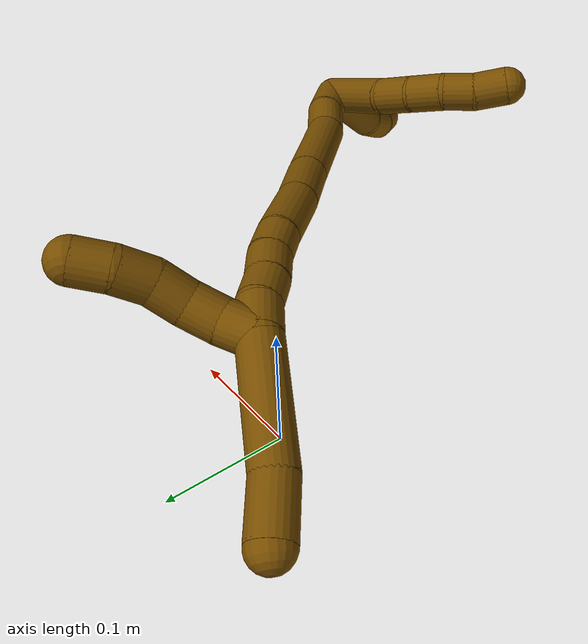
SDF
<sdf version="1.7">
 <world name="default">
  <model name="12">
   <static>0</static>
   <link name="12">
    <collision name="collision-cylinder-e_1_2_8">
     <pose>-0.02438 -0.002081 -0.01792 3.02596 -0.933758 -2.91293</pose>
     <geometry><cylinder><radius>0.0125</radius><length>0.060658</length></cylinder></geometry>
     <surface>
      <friction><ode><mu>1.16</mu><mu2>1.16</mu2><slip1>0</slip1><slip2>0</slip2></ode></friction>
      <contact><ode><kp>1e+06</kp><kd>1</kd><max_vel>0</max_vel><min_depth>0.001</min_depth></ode></contact>
     </surface>
    </collision>
    <visual name="visual-cylinder-e_1_2_8">
     <pose>-0.02438 -0.002081 -0.01792 3.02596 -0.933758 -2.91293</pose>
     <geometry><cylinder><radius>0.0125</radius><length>0.060658</length></cylinder></geometry>
     <material><ambient>0.466667 0.301961 0 1</ambient></material>
    </visual>
    <collision name="collision-cylinder-e_2_8_9">
     <pose>-0.058993 -0.00786 -0.041223 2.53978 -1.00275 -2.11119</pose>
     <geometry><cylinder><radius>0.0125</radius><length>0.024278</length></cylinder></geometry>
     <surface>
      <friction><ode><mu>1.16</mu><mu2>1.16</mu2><slip1>0</slip1><slip2>0</slip2></ode></friction>
      <contact><ode><kp>1e+06</kp><kd>1</kd><max_vel>0</max_vel><min_depth>0.001</min_depth></ode></contact>
     </surface>
    </collision>
    <visual name="visual-cylinder-e_2_8_9">
     <pose>-0.058993 -0.00786 -0.041223 2.53978 -1.00275 -2.11119</pose>
     <geometry><cylinder><radius>0.0125</radius><length>0.024278</length></cylinder></geometry>
     <material><ambient>0.466667 0.301961 0 1</ambient></material>
    </visual>
    <collision name="collision-cylinder-e_3_9_10">
     <pose>-0.078746 -0.017045 -0.050786 2.22172 -0.943749 -1.60054</pose>
     <geometry><cylinder><radius>0.0125</radius><length>0.023514</length></cylinder></geometry>
     <surface>
      <friction><ode><mu>1.16</mu><mu2>1.16</mu2><slip1>0</slip1><slip2>0</slip2></ode></friction>
      <contact><ode><kp>1e+06</kp><kd>1</kd><max_vel>0</max_vel><min_depth>0.001</min_depth></ode></contact>
     </surface>
    </collision>
    <visual name="visual-cylinder-e_3_9_10">
     <pose>-0.078746 -0.017045 -0.050786 2.22172 -0.943749 -1.60054</pose>
     <geometry><cylinder><radius>0.0125</radius><length>0.023514</length></cylinder></geometry>
     <material><ambient>0.466667 0.301961 0 1</ambient></material>
    </visual>
    <collision name="collision-cylinder-e_4_10_11">
     <pose>-0.095122 -0.029424 -0.057769 1.95722 -0.744614 -1.05192</pose>
     <geometry><cylinder><radius>0.0125</radius><length>0.020233</length></cylinder></geometry>
     <surface>
      <friction><ode><mu>1.16</mu><mu2>1.16</mu2><slip1>0</slip1><slip2>0</slip2></ode></friction>
      <contact><ode><kp>1e+06</kp><kd>1</kd><max_vel>0</max_vel><min_depth>0.001</min_depth></ode></contact>
     </surface>
    </collision>
    <visual name="visual-cylinder-e_4_10_11">
     <pose>-0.095122 -0.029424 -0.057769 1.95722 -0.744614 -1.05192</pose>
     <geometry><cylinder><radius>0.0125</radius><length>0.020233</length></cylinder></geometry>
     <material><ambient>0.466667 0.301961 0 1</ambient></material>
    </visual>
    <collision name="collision-cylinder-e_5_11_6">
     <pose>-0.110004 -0.043242 -0.061668 1.72749 -0.852572 -0.977081</pose>
     <geometry><cylinder><radius>0.0125</radius><length>0.021317</length></cylinder></geometry>
     <surface>
      <friction><ode><mu>1.16</mu><mu2>1.16</mu2><slip1>0</slip1><slip2>0</slip2></ode></friction>
      <contact><ode><kp>1e+06</kp><kd>1</kd><max_vel>0</max_vel><min_depth>0.001</min_depth></ode></contact>
     </surface>
    </collision>
    <visual name="visual-cylinder-e_5_11_6">
     <pose>-0.110004 -0.043242 -0.061668 1.72749 -0.852572 -0.977081</pose>
     <geometry><cylinder><radius>0.0125</radius><length>0.021317</length></cylinder></geometry>
     <material><ambient>0.466667 0.301961 0 1</ambient></material>
    </visual>
    <collision name="collision-cylinder-e_1_2_12">
     <pose>0.009965 -0.023402 0.002218 1.47632 0.400947 0.365589</pose>
     <geometry><cylinder><radius>0.0125</radius><length>0.051064</length></cylinder></geometry>
     <surface>
      <friction><ode><mu>1.16</mu><mu2>1.16</mu2><slip1>0</slip1><slip2>0</slip2></ode></friction>
      <contact><ode><kp>1e+06</kp><kd>1</kd><max_vel>0</max_vel><min_depth>0.001</min_depth></ode></contact>
     </surface>
    </collision>
    <visual name="visual-cylinder-e_1_2_12">
     <pose>0.009965 -0.023402 0.002218 1.47632 0.400947 0.365589</pose>
     <geometry><cylinder><radius>0.0125</radius><length>0.051064</length></cylinder></geometry>
     <material><ambient>0.466667 0.301961 0 1</ambient></material>
    </visual>
    <collision name="collision-cylinder-e_2_12_13">
     <pose>0.024858 -0.057615 0.0098 1.11013 0.38771 0.242283</pose>
     <geometry><cylinder><radius>0.0125</radius><length>0.026071</length></cylinder></geometry>
     <surface>
      <friction><ode><mu>1.16</mu><mu2>1.16</mu2><slip1>0</slip1><slip2>0</slip2></ode></friction>
      <contact><ode><kp>1e+06</kp><kd>1</kd><max_vel>0</max_vel><min_depth>0.001</min_depth></ode></contact>
     </surface>
    </collision>
    <visual name="visual-cylinder-e_2_12_13">
     <pose>0.024858 -0.057615 0.0098 1.11013 0.38771 0.242283</pose>
     <geometry><cylinder><radius>0.0125</radius><length>0.026071</length></cylinder></geometry>
     <material><ambient>0.466667 0.301961 0 1</ambient></material>
    </visual>
    <collision name="collision-cylinder-e_3_13_5">
     <pose>0.033468 -0.07593 0.022963 0.766319 0.327902 0.133171</pose>
     <geometry><cylinder><radius>0.0125</radius><length>0.022865</length></cylinder></geometry>
     <surface>
      <friction><ode><mu>1.16</mu><mu2>1.16</mu2><slip1>0</slip1><slip2>0</slip2></ode></friction>
      <contact><ode><kp>1e+06</kp><kd>1</kd><max_vel>0</max_vel><min_depth>0.001</min_depth></ode></contact>
     </surface>
    </collision>
    <visual name="visual-cylinder-e_3_13_5">
     <pose>0.033468 -0.07593 0.022963 0.766319 0.327902 0.133171</pose>
     <geometry><cylinder><radius>0.0125</radius><length>0.022865</length></cylinder></geometry>
     <material><ambient>0.466667 0.301961 0 1</ambient></material>
    </visual>
    <collision name="collision-cylinder-e_1_2_14">
     <pose>-0.003975 0.008545 -0.013735 -2.58509 -0.240929 0.801627</pose>
     <geometry><cylinder><radius>0.0125</radius><length>0.033315</length></cylinder></geometry>
     <surface>
      <friction><ode><mu>1.16</mu><mu2>1.16</mu2><slip1>0</slip1><slip2>0</slip2></ode></friction>
      <contact><ode><kp>1e+06</kp><kd>1</kd><max_vel>0</max_vel><min_depth>0.001</min_depth></ode></contact>
     </surface>
    </collision>
    <visual name="visual-cylinder-e_1_2_14">
     <pose>-0.003975 0.008545 -0.013735 -2.58509 -0.240929 0.801627</pose>
     <geometry><cylinder><radius>0.0125</radius><length>0.033315</length></cylinder></geometry>
     <material><ambient>0.466667 0.301961 0 1</ambient></material>
    </visual>
    <collision name="collision-cylinder-e_2_14_15">
     <pose>-0.011426 0.021446 -0.040173 -2.81117 -0.25333 1.30455</pose>
     <geometry><cylinder><radius>0.0125</radius><length>0.027742</length></cylinder></geometry>
     <surface>
      <friction><ode><mu>1.16</mu><mu2>1.16</mu2><slip1>0</slip1><slip2>0</slip2></ode></friction>
      <contact><ode><kp>1e+06</kp><kd>1</kd><max_vel>0</max_vel><min_depth>0.001</min_depth></ode></contact>
     </surface>
    </collision>
    <visual name="visual-cylinder-e_2_14_15">
     <pose>-0.011426 0.021446 -0.040173 -2.81117 -0.25333 1.30455</pose>
     <geometry><cylinder><radius>0.0125</radius><length>0.027742</length></cylinder></geometry>
     <material><ambient>0.466667 0.301961 0 1</ambient></material>
    </visual>
    <collision name="collision-cylinder-e_3_15_16">
     <pose>-0.025841 0.045018 -0.082409 -2.56479 -0.301012 0.945107</pose>
     <geometry><cylinder><radius>0.0125</radius><length>0.073788</length></cylinder></geometry>
     <surface>
      <friction><ode><mu>1.16</mu><mu2>1.16</mu2><slip1>0</slip1><slip2>0</slip2></ode></friction>
      <contact><ode><kp>1e+06</kp><kd>1</kd><max_vel>0</max_vel><min_depth>0.001</min_depth></ode></contact>
     </surface>
    </collision>
    <visual name="visual-cylinder-e_3_15_16">
     <pose>-0.025841 0.045018 -0.082409 -2.56479 -0.301012 0.945107</pose>
     <geometry><cylinder><radius>0.0125</radius><length>0.073788</length></cylinder></geometry>
     <material><ambient>0.466667 0.301961 0 1</ambient></material>
    </visual>
    <collision name="collision-cylinder-e_4_16_17">
     <pose>-0.04254 0.073851 -0.127497 -2.58777 -0.305205 0.992024</pose>
     <geometry><cylinder><radius>0.0125</radius><length>0.038345</length></cylinder></geometry>
     <surface>
      <friction><ode><mu>1.16</mu><mu2>1.16</mu2><slip1>0</slip1><slip2>0</slip2></ode></friction>
      <contact><ode><kp>1e+06</kp><kd>1</kd><max_vel>0</max_vel><min_depth>0.001</min_depth></ode></contact>
     </surface>
    </collision>
    <visual name="visual-cylinder-e_4_16_17">
     <pose>-0.04254 0.073851 -0.127497 -2.58777 -0.305205 0.992024</pose>
     <geometry><cylinder><radius>0.0125</radius><length>0.038345</length></cylinder></geometry>
     <material><ambient>0.466667 0.301961 0 1</ambient></material>
    </visual>
    <collision name="collision-cylinder-e_5_17_18">
     <pose>-0.054533 0.096112 -0.160846 -2.52387 -0.278034 0.826535</pose>
     <geometry><cylinder><radius>0.0125</radius><length>0.045405</length></cylinder></geometry>
     <surface>
      <friction><ode><mu>1.16</mu><mu2>1.16</mu2><slip1>0</slip1><slip2>0</slip2></ode></friction>
      <contact><ode><kp>1e+06</kp><kd>1</kd><max_vel>0</max_vel><min_depth>0.001</min_depth></ode></contact>
     </surface>
    </collision>
    <visual name="visual-cylinder-e_5_17_18">
     <pose>-0.054533 0.096112 -0.160846 -2.52387 -0.278034 0.826535</pose>
     <geometry><cylinder><radius>0.0125</radius><length>0.045405</length></cylinder></geometry>
     <material><ambient>0.466667 0.301961 0 1</ambient></material>
    </visual>
    <collision name="collision-cylinder-e_6_18_19">
     <pose>-0.062758 0.113716 -0.187325 -2.62258 -0.196878 0.712245</pose>
     <geometry><cylinder><radius>0.0125</radius><length>0.020391</length></cylinder></geometry>
     <surface>
      <friction><ode><mu>1.16</mu><mu2>1.16</mu2><slip1>0</slip1><slip2>0</slip2></ode></friction>
      <contact><ode><kp>1e+06</kp><kd>1</kd><max_vel>0</max_vel><min_depth>0.001</min_depth></ode></contact>
     </surface>
    </collision>
    <visual name="visual-cylinder-e_6_18_19">
     <pose>-0.062758 0.113716 -0.187325 -2.62258 -0.196878 0.712245</pose>
     <geometry><cylinder><radius>0.0125</radius><length>0.020391</length></cylinder></geometry>
     <material><ambient>0.466667 0.301961 0 1</ambient></material>
    </visual>
    <collision name="collision-cylinder-e_7_19_20">
     <pose>-0.067543 0.122136 -0.205088 -2.77748 -0.279645 1.30543</pose>
     <geometry><cylinder><radius>0.0125</radius><length>0.020223</length></cylinder></geometry>
     <surface>
      <friction><ode><mu>1.16</mu><mu2>1.16</mu2><slip1>0</slip1><slip2>0</slip2></ode></friction>
      <contact><ode><kp>1e+06</kp><kd>1</kd><max_vel>0</max_vel><min_depth>0.001</min_depth></ode></contact>
     </surface>
    </collision>
    <visual name="visual-cylinder-e_7_19_20">
     <pose>-0.067543 0.122136 -0.205088 -2.77748 -0.279645 1.30543</pose>
     <geometry><cylinder><radius>0.0125</radius><length>0.020223</length></cylinder></geometry>
     <material><ambient>0.466667 0.301961 0 1</ambient></material>
    </visual>
    <collision name="collision-cylinder-e_8_20_21">
     <pose>-0.072606 0.130342 -0.222843 -2.64106 -0.225879 0.835203</pose>
     <geometry><cylinder><radius>0.0125</radius><length>0.020287</length></cylinder></geometry>
     <surface>
      <friction><ode><mu>1.16</mu><mu2>1.16</mu2><slip1>0</slip1><slip2>0</slip2></ode></friction>
      <contact><ode><kp>1e+06</kp><kd>1</kd><max_vel>0</max_vel><min_depth>0.001</min_depth></ode></contact>
     </surface>
    </collision>
    <visual name="visual-cylinder-e_8_20_21">
     <pose>-0.072606 0.130342 -0.222843 -2.64106 -0.225879 0.835203</pose>
     <geometry><cylinder><radius>0.0125</radius><length>0.020287</length></cylinder></geometry>
     <material><ambient>0.466667 0.301961 0 1</ambient></material>
    </visual>
    <collision name="collision-cylinder-e_9_21_1">
     <pose>-0.07699 0.137351 -0.241289 -2.91388 -0.207553 1.4775</pose>
     <geometry><cylinder><radius>0.0125</radius><length>0.020503</length></cylinder></geometry>
     <surface>
      <friction><ode><mu>1.16</mu><mu2>1.16</mu2><slip1>0</slip1><slip2>0</slip2></ode></friction>
      <contact><ode><kp>1e+06</kp><kd>1</kd><max_vel>0</max_vel><min_depth>0.001</min_depth></ode></contact>
     </surface>
    </collision>
    <visual name="visual-cylinder-e_9_21_1">
     <pose>-0.07699 0.137351 -0.241289 -2.91388 -0.207553 1.4775</pose>
     <geometry><cylinder><radius>0.0125</radius><length>0.020503</length></cylinder></geometry>
     <material><ambient>0.466667 0.301961 0 1</ambient></material>
    </visual>
    <collision name="collision-cylinder-e_1_1_22">
     <pose>-0.079118 0.139627 -0.284815 -3.14126 -0.000436 1.82817</pose>
     <geometry><cylinder><radius>0.0125</radius><length>0.067508</length></cylinder></geometry>
     <surface>
      <friction><ode><mu>1.16</mu><mu2>1.16</mu2><slip1>0</slip1><slip2>0</slip2></ode></friction>
      <contact><ode><kp>1e+06</kp><kd>1</kd><max_vel>0</max_vel><min_depth>0.001</min_depth></ode></contact>
     </surface>
    </collision>
    <visual name="visual-cylinder-e_1_1_22">
     <pose>-0.079118 0.139627 -0.284815 -3.14126 -0.000436 1.82817</pose>
     <geometry><cylinder><radius>0.0125</radius><length>0.067508</length></cylinder></geometry>
     <material><ambient>0.466667 0.301961 0 1</ambient></material>
    </visual>
    <collision name="collision-cylinder-e_2_22_4">
     <pose>-0.079806 0.142972 -0.334455 -2.93469 -0.041466 0.394272</pose>
     <geometry><cylinder><radius>0.0125</radius><length>0.032492</length></cylinder></geometry>
     <surface>
      <friction><ode><mu>1.16</mu><mu2>1.16</mu2><slip1>0</slip1><slip2>0</slip2></ode></friction>
      <contact><ode><kp>1e+06</kp><kd>1</kd><max_vel>0</max_vel><min_depth>0.001</min_depth></ode></contact>
     </surface>
    </collision>
    <visual name="visual-cylinder-e_2_22_4">
     <pose>-0.079806 0.142972 -0.334455 -2.93469 -0.041466 0.394272</pose>
     <geometry><cylinder><radius>0.0125</radius><length>0.032492</length></cylinder></geometry>
     <material><ambient>0.466667 0.301961 0 1</ambient></material>
    </visual>
    <collision name="collision-cylinder-e_1_1_23">
     <pose>-0.073494 0.145967 -0.245751 -0.874464 0.595496 -0.284921</pose>
     <geometry><cylinder><radius>0.0125</radius><length>0.02</length></cylinder></geometry>
     <surface>
      <friction><ode><mu>1.16</mu><mu2>1.16</mu2><slip1>0</slip1><slip2>0</slip2></ode></friction>
      <contact><ode><kp>1e+06</kp><kd>1</kd><max_vel>0</max_vel><min_depth>0.001</min_depth></ode></contact>
     </surface>
    </collision>
    <visual name="visual-cylinder-e_1_1_23">
     <pose>-0.073494 0.145967 -0.245751 -0.874464 0.595496 -0.284921</pose>
     <geometry><cylinder><radius>0.0125</radius><length>0.02</length></cylinder></geometry>
     <material><ambient>0.466667 0.301961 0 1</ambient></material>
    </visual>
    <collision name="collision-cylinder-e_2_23_24">
     <pose>-0.064893 0.160289 -0.235195 -0.988695 0.303755 -0.164618</pose>
     <geometry><cylinder><radius>0.0125</radius><length>0.02</length></cylinder></geometry>
     <surface>
      <friction><ode><mu>1.16</mu><mu2>1.16</mu2><slip1>0</slip1><slip2>0</slip2></ode></friction>
      <contact><ode><kp>1e+06</kp><kd>1</kd><max_vel>0</max_vel><min_depth>0.001</min_depth></ode></contact>
     </surface>
    </collision>
    <visual name="visual-cylinder-e_2_23_24">
     <pose>-0.064893 0.160289 -0.235195 -0.988695 0.303755 -0.164618</pose>
     <geometry><cylinder><radius>0.0125</radius><length>0.02</length></cylinder></geometry>
     <material><ambient>0.466667 0.301961 0 1</ambient></material>
    </visual>
    <collision name="collision-cylinder-e_3_24_25">
     <pose>-0.061723 0.177114 -0.225305 -1.08777 0.017961 -0.010861</pose>
     <geometry><cylinder><radius>0.0125</radius><length>0.02</length></cylinder></geometry>
     <surface>
      <friction><ode><mu>1.16</mu><mu2>1.16</mu2><slip1>0</slip1><slip2>0</slip2></ode></friction>
      <contact><ode><kp>1e+06</kp><kd>1</kd><max_vel>0</max_vel><min_depth>0.001</min_depth></ode></contact>
     </surface>
    </collision>
    <visual name="visual-cylinder-e_3_24_25">
     <pose>-0.061723 0.177114 -0.225305 -1.08777 0.017961 -0.010861</pose>
     <geometry><cylinder><radius>0.0125</radius><length>0.02</length></cylinder></geometry>
     <material><ambient>0.466667 0.301961 0 1</ambient></material>
    </visual>
    <collision name="collision-cylinder-e_4_25_26">
     <pose>-0.061036 0.195747 -0.218629 -1.3659 0.050705 -0.041254</pose>
     <geometry><cylinder><radius>0.0125</radius><length>0.02</length></cylinder></geometry>
     <surface>
      <friction><ode><mu>1.16</mu><mu2>1.16</mu2><slip1>0</slip1><slip2>0</slip2></ode></friction>
      <contact><ode><kp>1e+06</kp><kd>1</kd><max_vel>0</max_vel><min_depth>0.001</min_depth></ode></contact>
     </surface>
    </collision>
    <visual name="visual-cylinder-e_4_25_26">
     <pose>-0.061036 0.195747 -0.218629 -1.3659 0.050705 -0.041254</pose>
     <geometry><cylinder><radius>0.0125</radius><length>0.02</length></cylinder></geometry>
     <material><ambient>0.466667 0.301961 0 1</ambient></material>
    </visual>
    <collision name="collision-cylinder-e_5_26_3">
     <pose>-0.057113 0.214648 -0.214338 -1.32807 0.348705 -0.273967</pose>
     <geometry><cylinder><radius>0.0125</radius><length>0.02</length></cylinder></geometry>
     <surface>
      <friction><ode><mu>1.16</mu><mu2>1.16</mu2><slip1>0</slip1><slip2>0</slip2></ode></friction>
      <contact><ode><kp>1e+06</kp><kd>1</kd><max_vel>0</max_vel><min_depth>0.001</min_depth></ode></contact>
     </surface>
    </collision>
    <visual name="visual-cylinder-e_5_26_3">
     <pose>-0.057113 0.214648 -0.214338 -1.32807 0.348705 -0.273967</pose>
     <geometry><cylinder><radius>0.0125</radius><length>0.02</length></cylinder></geometry>
     <material><ambient>0.466667 0.301961 0 1</ambient></material>
    </visual>
    <collision name="collision-sphere-3">
     <pose>-0.053696 0.22377 -0.21208 0 -0 0</pose>
     <geometry><sphere><radius>0.0125</radius></sphere></geometry>
     <surface>
      <friction><ode><mu>1.16</mu><mu2>1.16</mu2><slip1>0</slip1><slip2>0</slip2></ode></friction>
      <contact><ode><kp>1e+06</kp><kd>1</kd><max_vel>0</max_vel><min_depth>0.001</min_depth></ode></contact>
     </surface>
    </collision>
    <visual name="visual-sphere-3">
     <pose>-0.053696 0.22377 -0.21208 0 -0 0</pose>
     <geometry><sphere><radius>0.0125</radius></sphere></geometry>
     <material><ambient>0.466667 0.301961 0 1</ambient></material>
    </visual>
    <collision name="collision-sphere-26">
     <pose>-0.060529 0.205525 -0.216597 0 -0 0</pose>
     <geometry><sphere><radius>0.0125</radius></sphere></geometry>
     <surface>
      <friction><ode><mu>1.16</mu><mu2>1.16</mu2><slip1>0</slip1><slip2>0</slip2></ode></friction>
      <contact><ode><kp>1e+06</kp><kd>1</kd><max_vel>0</max_vel><min_depth>0.001</min_depth></ode></contact>
     </surface>
    </collision>
    <visual name="visual-sphere-26">
     <pose>-0.060529 0.205525 -0.216597 0 -0 0</pose>
     <geometry><sphere><radius>0.0125</radius></sphere></geometry>
     <material><ambient>0.466667 0.301961 0 1</ambient></material>
    </visual>
    <collision name="collision-sphere-25">
     <pose>-0.061543 0.185968 -0.220661 0 -0 0</pose>
     <geometry><sphere><radius>0.0125</radius></sphere></geometry>
     <surface>
      <friction><ode><mu>1.16</mu><mu2>1.16</mu2><slip1>0</slip1><slip2>0</slip2></ode></friction>
      <contact><ode><kp>1e+06</kp><kd>1</kd><max_vel>0</max_vel><min_depth>0.001</min_depth></ode></contact>
     </surface>
    </collision>
    <visual name="visual-sphere-25">
     <pose>-0.061543 0.185968 -0.220661 0 -0 0</pose>
     <geometry><sphere><radius>0.0125</radius></sphere></geometry>
     <material><ambient>0.466667 0.301961 0 1</ambient></material>
    </visual>
    <collision name="collision-sphere-24">
     <pose>-0.061902 0.168259 -0.229949 0 -0 0</pose>
     <geometry><sphere><radius>0.0125</radius></sphere></geometry>
     <surface>
      <friction><ode><mu>1.16</mu><mu2>1.16</mu2><slip1>0</slip1><slip2>0</slip2></ode></friction>
      <contact><ode><kp>1e+06</kp><kd>1</kd><max_vel>0</max_vel><min_depth>0.001</min_depth></ode></contact>
     </surface>
    </collision>
    <visual name="visual-sphere-24">
     <pose>-0.061902 0.168259 -0.229949 0 -0 0</pose>
     <geometry><sphere><radius>0.0125</radius></sphere></geometry>
     <material><ambient>0.466667 0.301961 0 1</ambient></material>
    </visual>
    <collision name="collision-sphere-23">
     <pose>-0.067884 0.152318 -0.240441 0 -0 0</pose>
     <geometry><sphere><radius>0.0125</radius></sphere></geometry>
     <surface>
      <friction><ode><mu>1.16</mu><mu2>1.16</mu2><slip1>0</slip1><slip2>0</slip2></ode></friction>
      <contact><ode><kp>1e+06</kp><kd>1</kd><max_vel>0</max_vel><min_depth>0.001</min_depth></ode></contact>
     </surface>
    </collision>
    <visual name="visual-sphere-23">
     <pose>-0.067884 0.152318 -0.240441 0 -0 0</pose>
     <geometry><sphere><radius>0.0125</radius></sphere></geometry>
     <material><ambient>0.466667 0.301961 0 1</ambient></material>
    </visual>
    <collision name="collision-sphere-4">
     <pose>-0.080479 0.146307 -0.350341 0 -0 0</pose>
     <geometry><sphere><radius>0.0125</radius></sphere></geometry>
     <surface>
      <friction><ode><mu>1.16</mu><mu2>1.16</mu2><slip1>0</slip1><slip2>0</slip2></ode></friction>
      <contact><ode><kp>1e+06</kp><kd>1</kd><max_vel>0</max_vel><min_depth>0.001</min_depth></ode></contact>
     </surface>
    </collision>
    <visual name="visual-sphere-4">
     <pose>-0.080479 0.146307 -0.350341 0 -0 0</pose>
     <geometry><sphere><radius>0.0125</radius></sphere></geometry>
     <material><ambient>0.466667 0.301961 0 1</ambient></material>
    </visual>
    <collision name="collision-sphere-22">
     <pose>-0.079132 0.139638 -0.318569 0 -0 0</pose>
     <geometry><sphere><radius>0.0125</radius></sphere></geometry>
     <surface>
      <friction><ode><mu>1.16</mu><mu2>1.16</mu2><slip1>0</slip1><slip2>0</slip2></ode></friction>
      <contact><ode><kp>1e+06</kp><kd>1</kd><max_vel>0</max_vel><min_depth>0.001</min_depth></ode></contact>
     </surface>
    </collision>
    <visual name="visual-sphere-22">
     <pose>-0.079132 0.139638 -0.318569 0 -0 0</pose>
     <geometry><sphere><radius>0.0125</radius></sphere></geometry>
     <material><ambient>0.466667 0.301961 0 1</ambient></material>
    </visual>
    <collision name="collision-sphere-1">
     <pose>-0.079103 0.139615 -0.251061 0 -0 0</pose>
     <geometry><sphere><radius>0.0125</radius></sphere></geometry>
     <surface>
      <friction><ode><mu>1.16</mu><mu2>1.16</mu2><slip1>0</slip1><slip2>0</slip2></ode></friction>
      <contact><ode><kp>1e+06</kp><kd>1</kd><max_vel>0</max_vel><min_depth>0.001</min_depth></ode></contact>
     </surface>
    </collision>
    <visual name="visual-sphere-1">
     <pose>-0.079103 0.139615 -0.251061 0 -0 0</pose>
     <geometry><sphere><radius>0.0125</radius></sphere></geometry>
     <material><ambient>0.466667 0.301961 0 1</ambient></material>
    </visual>
    <collision name="collision-sphere-21">
     <pose>-0.074878 0.135086 -0.231516 0 -0 0</pose>
     <geometry><sphere><radius>0.0125</radius></sphere></geometry>
     <surface>
      <friction><ode><mu>1.16</mu><mu2>1.16</mu2><slip1>0</slip1><slip2>0</slip2></ode></friction>
      <contact><ode><kp>1e+06</kp><kd>1</kd><max_vel>0</max_vel><min_depth>0.001</min_depth></ode></contact>
     </surface>
    </collision>
    <visual name="visual-sphere-21">
     <pose>-0.074878 0.135086 -0.231516 0 -0 0</pose>
     <geometry><sphere><radius>0.0125</radius></sphere></geometry>
     <material><ambient>0.466667 0.301961 0 1</ambient></material>
    </visual>
    <collision name="collision-sphere-6">
     <pose>-0.118029 -0.05017 -0.062762 0 -0 0</pose>
     <geometry><sphere><radius>0.0125</radius></sphere></geometry>
     <surface>
      <friction><ode><mu>1.16</mu><mu2>1.16</mu2><slip1>0</slip1><slip2>0</slip2></ode></friction>
      <contact><ode><kp>1e+06</kp><kd>1</kd><max_vel>0</max_vel><min_depth>0.001</min_depth></ode></contact>
     </surface>
    </collision>
    <visual name="visual-sphere-6">
     <pose>-0.118029 -0.05017 -0.062762 0 -0 0</pose>
     <geometry><sphere><radius>0.0125</radius></sphere></geometry>
     <material><ambient>0.466667 0.301961 0 1</ambient></material>
    </visual>
    <collision name="collision-sphere-11">
     <pose>-0.101978 -0.036314 -0.060573 0 -0 0</pose>
     <geometry><sphere><radius>0.0125</radius></sphere></geometry>
     <surface>
      <friction><ode><mu>1.16</mu><mu2>1.16</mu2><slip1>0</slip1><slip2>0</slip2></ode></friction>
      <contact><ode><kp>1e+06</kp><kd>1</kd><max_vel>0</max_vel><min_depth>0.001</min_depth></ode></contact>
     </surface>
    </collision>
    <visual name="visual-sphere-11">
     <pose>-0.101978 -0.036314 -0.060573 0 -0 0</pose>
     <geometry><sphere><radius>0.0125</radius></sphere></geometry>
     <material><ambient>0.466667 0.301961 0 1</ambient></material>
    </visual>
    <collision name="collision-sphere-10">
     <pose>-0.088267 -0.022533 -0.054966 0 -0 0</pose>
     <geometry><sphere><radius>0.0125</radius></sphere></geometry>
     <surface>
      <friction><ode><mu>1.16</mu><mu2>1.16</mu2><slip1>0</slip1><slip2>0</slip2></ode></friction>
      <contact><ode><kp>1e+06</kp><kd>1</kd><max_vel>0</max_vel><min_depth>0.001</min_depth></ode></contact>
     </surface>
    </collision>
    <visual name="visual-sphere-10">
     <pose>-0.088267 -0.022533 -0.054966 0 -0 0</pose>
     <geometry><sphere><radius>0.0125</radius></sphere></geometry>
     <material><ambient>0.466667 0.301961 0 1</ambient></material>
    </visual>
    <collision name="collision-sphere-9">
     <pose>-0.069226 -0.011557 -0.046606 0 -0 0</pose>
     <geometry><sphere><radius>0.0125</radius></sphere></geometry>
     <surface>
      <friction><ode><mu>1.16</mu><mu2>1.16</mu2><slip1>0</slip1><slip2>0</slip2></ode></friction>
      <contact><ode><kp>1e+06</kp><kd>1</kd><max_vel>0</max_vel><min_depth>0.001</min_depth></ode></contact>
     </surface>
    </collision>
    <visual name="visual-sphere-9">
     <pose>-0.069226 -0.011557 -0.046606 0 -0 0</pose>
     <geometry><sphere><radius>0.0125</radius></sphere></geometry>
     <material><ambient>0.466667 0.301961 0 1</ambient></material>
    </visual>
    <collision name="collision-sphere-2">
     <geometry><sphere><radius>0.0125</radius></sphere></geometry>
     <surface>
      <friction><ode><mu>1.16</mu><mu2>1.16</mu2><slip1>0</slip1><slip2>0</slip2></ode></friction>
      <contact><ode><kp>1e+06</kp><kd>1</kd><max_vel>0</max_vel><min_depth>0.001</min_depth></ode></contact>
     </surface>
    </collision>
    <visual name="visual-sphere-2">
     <geometry><sphere><radius>0.0125</radius></sphere></geometry>
     <material><ambient>0.466667 0.301961 0 1</ambient></material>
    </visual>
    <collision name="collision-sphere-19">
     <pose>-0.064752 0.118675 -0.196007 0 -0 0</pose>
     <geometry><sphere><radius>0.0125</radius></sphere></geometry>
     <surface>
      <friction><ode><mu>1.16</mu><mu2>1.16</mu2><slip1>0</slip1><slip2>0</slip2></ode></friction>
      <contact><ode><kp>1e+06</kp><kd>1</kd><max_vel>0</max_vel><min_depth>0.001</min_depth></ode></contact>
     </surface>
    </collision>
    <visual name="visual-sphere-19">
     <pose>-0.064752 0.118675 -0.196007 0 -0 0</pose>
     <geometry><sphere><radius>0.0125</radius></sphere></geometry>
     <material><ambient>0.466667 0.301961 0 1</ambient></material>
    </visual>
    <collision name="collision-sphere-8">
     <pose>-0.048761 -0.004163 -0.035839 0 -0 0</pose>
     <geometry><sphere><radius>0.0125</radius></sphere></geometry>
     <surface>
      <friction><ode><mu>1.16</mu><mu2>1.16</mu2><slip1>0</slip1><slip2>0</slip2></ode></friction>
      <contact><ode><kp>1e+06</kp><kd>1</kd><max_vel>0</max_vel><min_depth>0.001</min_depth></ode></contact>
     </surface>
    </collision>
    <visual name="visual-sphere-8">
     <pose>-0.048761 -0.004163 -0.035839 0 -0 0</pose>
     <geometry><sphere><radius>0.0125</radius></sphere></geometry>
     <material><ambient>0.466667 0.301961 0 1</ambient></material>
    </visual>
    <collision name="collision-sphere-12">
     <pose>0.01993 -0.046805 0.004435 0 -0 0</pose>
     <geometry><sphere><radius>0.0125</radius></sphere></geometry>
     <surface>
      <friction><ode><mu>1.16</mu><mu2>1.16</mu2><slip1>0</slip1><slip2>0</slip2></ode></friction>
      <contact><ode><kp>1e+06</kp><kd>1</kd><max_vel>0</max_vel><min_depth>0.001</min_depth></ode></contact>
     </surface>
    </collision>
    <visual name="visual-sphere-12">
     <pose>0.01993 -0.046805 0.004435 0 -0 0</pose>
     <geometry><sphere><radius>0.0125</radius></sphere></geometry>
     <material><ambient>0.466667 0.301961 0 1</ambient></material>
    </visual>
    <collision name="collision-sphere-13">
     <pose>0.029786 -0.068425 0.015165 0 -0 0</pose>
     <geometry><sphere><radius>0.0125</radius></sphere></geometry>
     <surface>
      <friction><ode><mu>1.16</mu><mu2>1.16</mu2><slip1>0</slip1><slip2>0</slip2></ode></friction>
      <contact><ode><kp>1e+06</kp><kd>1</kd><max_vel>0</max_vel><min_depth>0.001</min_depth></ode></contact>
     </surface>
    </collision>
    <visual name="visual-sphere-13">
     <pose>0.029786 -0.068425 0.015165 0 -0 0</pose>
     <geometry><sphere><radius>0.0125</radius></sphere></geometry>
     <material><ambient>0.466667 0.301961 0 1</ambient></material>
    </visual>
    <collision name="collision-sphere-5">
     <pose>0.03715 -0.083436 0.03076 0 -0 0</pose>
     <geometry><sphere><radius>0.0125</radius></sphere></geometry>
     <surface>
      <friction><ode><mu>1.16</mu><mu2>1.16</mu2><slip1>0</slip1><slip2>0</slip2></ode></friction>
      <contact><ode><kp>1e+06</kp><kd>1</kd><max_vel>0</max_vel><min_depth>0.001</min_depth></ode></contact>
     </surface>
    </collision>
    <visual name="visual-sphere-5">
     <pose>0.03715 -0.083436 0.03076 0 -0 0</pose>
     <geometry><sphere><radius>0.0125</radius></sphere></geometry>
     <material><ambient>0.466667 0.301961 0 1</ambient></material>
    </visual>
    <collision name="collision-sphere-14">
     <pose>-0.007949 0.017089 -0.027471 0 -0 0</pose>
     <geometry><sphere><radius>0.0125</radius></sphere></geometry>
     <surface>
      <friction><ode><mu>1.16</mu><mu2>1.16</mu2><slip1>0</slip1><slip2>0</slip2></ode></friction>
      <contact><ode><kp>1e+06</kp><kd>1</kd><max_vel>0</max_vel><min_depth>0.001</min_depth></ode></contact>
     </surface>
    </collision>
    <visual name="visual-sphere-14">
     <pose>-0.007949 0.017089 -0.027471 0 -0 0</pose>
     <geometry><sphere><radius>0.0125</radius></sphere></geometry>
     <material><ambient>0.466667 0.301961 0 1</ambient></material>
    </visual>
    <collision name="collision-sphere-15">
     <pose>-0.014902 0.025803 -0.052875 0 -0 0</pose>
     <geometry><sphere><radius>0.0125</radius></sphere></geometry>
     <surface>
      <friction><ode><mu>1.16</mu><mu2>1.16</mu2><slip1>0</slip1><slip2>0</slip2></ode></friction>
      <contact><ode><kp>1e+06</kp><kd>1</kd><max_vel>0</max_vel><min_depth>0.001</min_depth></ode></contact>
     </surface>
    </collision>
    <visual name="visual-sphere-15">
     <pose>-0.014902 0.025803 -0.052875 0 -0 0</pose>
     <geometry><sphere><radius>0.0125</radius></sphere></geometry>
     <material><ambient>0.466667 0.301961 0 1</ambient></material>
    </visual>
    <collision name="collision-sphere-16">
     <pose>-0.036779 0.064233 -0.111944 0 -0 0</pose>
     <geometry><sphere><radius>0.0125</radius></sphere></geometry>
     <surface>
      <friction><ode><mu>1.16</mu><mu2>1.16</mu2><slip1>0</slip1><slip2>0</slip2></ode></friction>
      <contact><ode><kp>1e+06</kp><kd>1</kd><max_vel>0</max_vel><min_depth>0.001</min_depth></ode></contact>
     </surface>
    </collision>
    <visual name="visual-sphere-16">
     <pose>-0.036779 0.064233 -0.111944 0 -0 0</pose>
     <geometry><sphere><radius>0.0125</radius></sphere></geometry>
     <material><ambient>0.466667 0.301961 0 1</ambient></material>
    </visual>
    <collision name="collision-sphere-17">
     <pose>-0.048302 0.083469 -0.14305 0 -0 0</pose>
     <geometry><sphere><radius>0.0125</radius></sphere></geometry>
     <surface>
      <friction><ode><mu>1.16</mu><mu2>1.16</mu2><slip1>0</slip1><slip2>0</slip2></ode></friction>
      <contact><ode><kp>1e+06</kp><kd>1</kd><max_vel>0</max_vel><min_depth>0.001</min_depth></ode></contact>
     </surface>
    </collision>
    <visual name="visual-sphere-17">
     <pose>-0.048302 0.083469 -0.14305 0 -0 0</pose>
     <geometry><sphere><radius>0.0125</radius></sphere></geometry>
     <material><ambient>0.466667 0.301961 0 1</ambient></material>
    </visual>
    <collision name="collision-sphere-18">
     <pose>-0.060764 0.108756 -0.178643 0 -0 0</pose>
     <geometry><sphere><radius>0.0125</radius></sphere></geometry>
     <surface>
      <friction><ode><mu>1.16</mu><mu2>1.16</mu2><slip1>0</slip1><slip2>0</slip2></ode></friction>
      <contact><ode><kp>1e+06</kp><kd>1</kd><max_vel>0</max_vel><min_depth>0.001</min_depth></ode></contact>
     </surface>
    </collision>
    <visual name="visual-sphere-18">
     <pose>-0.060764 0.108756 -0.178643 0 -0 0</pose>
     <geometry><sphere><radius>0.0125</radius></sphere></geometry>
     <material><ambient>0.466667 0.301961 0 1</ambient></material>
    </visual>
    <collision name="collision-sphere-20">
     <pose>-0.070334 0.125597 -0.21417 0 -0 0</pose>
     <geometry><sphere><radius>0.0125</radius></sphere></geometry>
     <surface>
      <friction><ode><mu>1.16</mu><mu2>1.16</mu2><slip1>0</slip1><slip2>0</slip2></ode></friction>
      <contact><ode><kp>1e+06</kp><kd>1</kd><max_vel>0</max_vel><min_depth>0.001</min_depth></ode></contact>
     </surface>
    </collision>
    <visual name="visual-sphere-20">
     <pose>-0.070334 0.125597 -0.21417 0 -0 0</pose>
     <geometry><sphere><radius>0.0125</radius></sphere></geometry>
     <material><ambient>0.466667 0.301961 0 1</ambient></material>
    </visual>
    <inertial>
     <pose>-0.04476 0.062566 -0.126708 0 -0 0</pose>
     <mass>0.75</mass>
     <inertia>
      <ixx>0.000109</ixx>
      <ixy>0</ixy>
      <ixz>0</ixz>
      <iyy>9.8e-05</iyy>
      <iyz>0</iyz>
      <izz>-1.4e-05</izz>
     </inertia>
    </inertial>
   </link>
   <pose>0.094032 -0.125052 0.21474 0.756395 0.87457 0.374387</pose>
  </model>
 </world>
</sdf>
